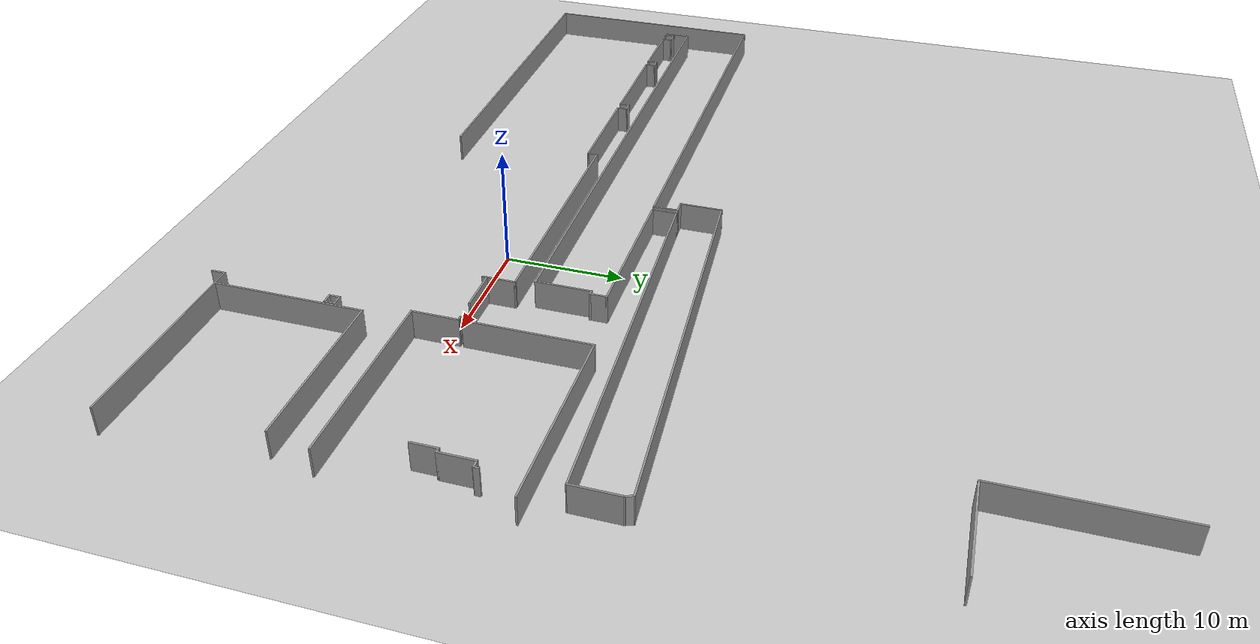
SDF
<sdf version="1.6">
 <world name="default">
  <model name="ground_plane">
   <static>1</static>
   <link name="link">
    <collision name="collision">
     <geometry><plane><normal>0 0 1</normal><size>100 100</size></plane></geometry>
     <surface><friction><ode><mu>100</mu><mu2>50</mu2></ode></friction></surface>
    </collision>
    <visual name="visual">
     <cast_shadows>0</cast_shadows>
     <geometry><plane><normal>0 0 1</normal><size>100 100</size></plane></geometry>
     <material>
      <script><uri>file://media/materials/scripts/gazebo.material</uri><name>Gazebo/Grey</name></script>
     </material>
    </visual>
   </link>
  </model>
  <model name="SEH_double_doors_open">
   <pose>0.441181 0.582592 0 0 -0 0</pose>
   <link name="Wall_1">
    <collision name="Wall_1_Collision">
     <geometry><box><size>31 0.15 2.5</size></box></geometry>
     <pose>0 0 1.25 0 -0 0</pose>
    </collision>
    <visual name="Wall_1_Visual">
     <pose>0 0 1.25 0 -0 0</pose>
     <geometry><box><size>31 0.15 2.5</size></box></geometry>
     <material>
      <script><uri>file://media/materials/scripts/gazebo.material</uri><name>Gazebo/Grey</name></script>
      <ambient>1 1 1 1</ambient>
     </material>
     <meta><layer>0</layer></meta>
    </visual>
    <pose>-30.613 -10.885 0 0 -0 3.14159</pose>
   </link>
   <link name="Wall_10">
    <collision name="Wall_10_Collision">
     <geometry><box><size>0.754811 0.15 2.5</size></box></geometry>
     <pose>0 0 1.25 0 -0 0</pose>
    </collision>
    <visual name="Wall_10_Visual">
     <pose>0 0 1.25 0 -0 0</pose>
     <geometry><box><size>0.754811 0.15 2.5</size></box></geometry>
     <material>
      <script><uri>file://media/materials/scripts/gazebo.material</uri><name>Gazebo/Grey</name></script>
      <ambient>1 1 1 1</ambient>
     </material>
     <meta><layer>0</layer></meta>
    </visual>
    <pose>25.6544 17.6654 0 0 -0 1.96559</pose>
   </link>
   <link name="Wall_122">
    <collision name="Wall_122_Collision">
     <geometry><box><size>0.5 0.15 2.5</size></box></geometry>
     <pose>0 0 1.25 0 -0 0</pose>
    </collision>
    <visual name="Wall_122_Visual">
     <pose>0 0 1.25 0 -0 0</pose>
     <geometry><box><size>0.5 0.15 2.5</size></box></geometry>
     <material>
      <script><uri>file://media/materials/scripts/gazebo.material</uri><name>Gazebo/Grey</name></script>
      <ambient>1 1 1 1</ambient>
     </material>
     <meta><layer>0</layer></meta>
    </visual>
    <pose>5.8537 0.004461 0 0 -0 1.5708</pose>
   </link>
   <link name="Wall_123">
    <collision name="Wall_123_Collision">
     <geometry><box><size>3.75 0.15 2.5</size></box></geometry>
     <pose>0 0 1.25 0 -0 0</pose>
    </collision>
    <visual name="Wall_123_Visual">
     <pose>0 0 1.25 0 -0 0</pose>
     <geometry><box><size>3.75 0.15 2.5</size></box></geometry>
     <material>
      <script><uri>file://media/materials/scripts/gazebo.material</uri><name>Gazebo/Grey</name></script>
      <ambient>1 1 1 1</ambient>
     </material>
     <meta><layer>0</layer></meta>
    </visual>
    <pose>7.6537 0.179461 0 0 -0 0</pose>
   </link>
   <link name="Wall_125">
    <collision name="Wall_125_Collision">
     <geometry><box><size>0.5 0.15 2.5</size></box></geometry>
     <pose>0 0 1.25 0 -0 0</pose>
    </collision>
    <visual name="Wall_125_Visual">
     <pose>0 0 1.25 0 -0 0</pose>
     <geometry><box><size>0.5 0.15 2.5</size></box></geometry>
     <material>
      <script><uri>file://media/materials/scripts/gazebo.material</uri><name>Gazebo/Grey</name></script>
      <ambient>1 1 1 1</ambient>
     </material>
     <meta><layer>0</layer></meta>
    </visual>
    <pose>11.5048 0.195336 0 0 -0 0</pose>
   </link>
   <link name="Wall_126">
    <collision name="Wall_126_Collision">
     <geometry><box><size>4 0.15 2.5</size></box></geometry>
     <pose>0 0 1.25 0 -0 0</pose>
    </collision>
    <visual name="Wall_126_Visual">
     <pose>0 0 1.25 0 -0 0</pose>
     <geometry><box><size>4 0.15 2.5</size></box></geometry>
     <material>
      <script><uri>file://media/materials/scripts/gazebo.material</uri><name>Gazebo/Grey</name></script>
      <ambient>1 1 1 1</ambient>
     </material>
     <meta><layer>0</layer></meta>
    </visual>
    <pose>11.6798 -1.72966 0 0 0 -1.5708</pose>
   </link>
   <link name="Wall_127">
    <collision name="Wall_127_Collision">
     <geometry><box><size>16 0.15 2.5</size></box></geometry>
     <pose>0 0 1.25 0 -0 0</pose>
    </collision>
    <visual name="Wall_127_Visual">
     <pose>0 0 1.25 0 -0 0</pose>
     <geometry><box><size>16 0.15 2.5</size></box></geometry>
     <material>
      <script><uri>file://media/materials/scripts/gazebo.material</uri><name>Gazebo/Grey</name></script>
      <ambient>1 1 1 1</ambient>
     </material>
     <meta><layer>0</layer></meta>
    </visual>
    <pose>19.6048 -3.65466 0 0 -0 0</pose>
   </link>
   <link name="Wall_135">
    <collision name="Wall_135_Collision">
     <geometry><box><size>2.25 0.15 2.5</size></box></geometry>
     <pose>0 0 1.25 0 -0 0</pose>
    </collision>
    <visual name="Wall_135_Visual">
     <pose>0 0 1.25 0 -0 0</pose>
     <geometry><box><size>2.25 0.15 2.5</size></box></geometry>
     <material>
      <script><uri>file://media/materials/scripts/gazebo.material</uri><name>Gazebo/Grey</name></script>
      <ambient>1 1 1 1</ambient>
     </material>
     <meta><layer>0</layer></meta>
    </visual>
    <pose>25.0798 3.39534 0 0 -0 1.5708</pose>
   </link>
   <link name="Wall_136">
    <collision name="Wall_136_Collision">
     <geometry><box><size>0.5 0.15 2.5</size></box></geometry>
     <pose>0 0 1.25 0 -0 0</pose>
    </collision>
    <visual name="Wall_136_Visual">
     <pose>0 0 1.25 0 -0 0</pose>
     <geometry><box><size>0.5 0.15 2.5</size></box></geometry>
     <material>
      <script><uri>file://media/materials/scripts/gazebo.material</uri><name>Gazebo/Grey</name></script>
      <ambient>1 1 1 1</ambient>
     </material>
     <meta><layer>0</layer></meta>
    </visual>
    <pose>25.2548 4.44534 0 0 -0 0</pose>
   </link>
   <link name="Wall_137">
    <collision name="Wall_137_Collision">
     <geometry><box><size>3 0.15 2.5</size></box></geometry>
     <pose>0 0 1.25 0 -0 0</pose>
    </collision>
    <visual name="Wall_137_Visual">
     <pose>0 0 1.25 0 -0 0</pose>
     <geometry><box><size>3 0.15 2.5</size></box></geometry>
     <material>
      <script><uri>file://media/materials/scripts/gazebo.material</uri><name>Gazebo/Grey</name></script>
      <ambient>1 1 1 1</ambient>
     </material>
     <meta><layer>0</layer></meta>
    </visual>
    <pose>25.4298 5.87034 0 0 -0 1.5708</pose>
   </link>
   <link name="Wall_138">
    <collision name="Wall_138_Collision">
     <geometry><box><size>0.75 0.15 2.5</size></box></geometry>
     <pose>0 0 1.25 0 -0 0</pose>
    </collision>
    <visual name="Wall_138_Visual">
     <pose>0 0 1.25 0 -0 0</pose>
     <geometry><box><size>0.75 0.15 2.5</size></box></geometry>
     <material>
      <script><uri>file://media/materials/scripts/gazebo.material</uri><name>Gazebo/Grey</name></script>
      <ambient>1 1 1 1</ambient>
     </material>
     <meta><layer>0</layer></meta>
    </visual>
    <pose>25.7298 7.29534 0 0 -0 0</pose>
   </link>
   <link name="Wall_143">
    <collision name="Wall_143_Collision">
     <geometry><box><size>0.5 0.15 2.5</size></box></geometry>
     <pose>0 0 1.25 0 -0 0</pose>
    </collision>
    <visual name="Wall_143_Visual">
     <pose>0 0 1.25 0 -0 0</pose>
     <geometry><box><size>0.5 0.15 2.5</size></box></geometry>
     <material>
      <script><uri>file://media/materials/scripts/gazebo.material</uri><name>Gazebo/Grey</name></script>
      <ambient>1 1 1 1</ambient>
     </material>
     <meta><layer>0</layer></meta>
    </visual>
    <pose>26.0298 7.47034 0 0 -0 1.5708</pose>
   </link>
   <link name="Wall_158">
    <collision name="Wall_158_Collision">
     <geometry><box><size>17 0.15 2.5</size></box></geometry>
     <pose>0 0 1.25 0 -0 0</pose>
    </collision>
    <visual name="Wall_158_Visual">
     <pose>0 0 1.25 0 -0 0</pose>
     <geometry><box><size>17 0.15 2.5</size></box></geometry>
     <material>
      <script><uri>file://media/materials/scripts/gazebo.material</uri><name>Gazebo/Grey</name></script>
      <ambient>1 1 1 1</ambient>
     </material>
     <meta><layer>0</layer></meta>
    </visual>
    <pose>19.6895 -19.9521 0 0 -0 3.14159</pose>
   </link>
   <link name="Wall_159">
    <collision name="Wall_159_Collision">
     <geometry><box><size>1.25 0.15 2.5</size></box></geometry>
     <pose>0 0 1.25 0 -0 0</pose>
    </collision>
    <visual name="Wall_159_Visual">
     <pose>0 0 1.25 0 -0 0</pose>
     <geometry><box><size>1.25 0.15 2.5</size></box></geometry>
     <material>
      <script><uri>file://media/materials/scripts/gazebo.material</uri><name>Gazebo/Grey</name></script>
      <ambient>1 1 1 1</ambient>
     </material>
     <meta><layer>0</layer></meta>
    </visual>
    <pose>11.2645 -20.5021 0 0 0 -1.5708</pose>
   </link>
   <link name="Wall_17">
    <collision name="Wall_17_Collision">
     <geometry><box><size>8.3246 0.15 2.5</size></box></geometry>
     <pose>0 0 1.25 0 -0 0</pose>
    </collision>
    <visual name="Wall_17_Visual">
     <pose>0 0 1.25 0 -0 0</pose>
     <geometry><box><size>8.3246 0.15 2.5</size></box></geometry>
     <material>
      <script><uri>file://media/materials/scripts/gazebo.material</uri><name>Gazebo/Grey</name></script>
      <ambient>1 1 1 1</ambient>
     </material>
     <meta><layer>0</layer></meta>
    </visual>
    <pose>22.0285 38.5432 0 0 0 -3.14119</pose>
   </link>
   <link name="Wall_172">
    <collision name="Wall_172_Collision">
     <geometry><box><size>14.25 0.15 2.5</size></box></geometry>
     <pose>0 0 1.25 0 -0 0</pose>
    </collision>
    <visual name="Wall_172_Visual">
     <pose>0 0 1.25 0 -0 0</pose>
     <geometry><box><size>14.25 0.15 2.5</size></box></geometry>
     <material>
      <script><uri>file://media/materials/scripts/gazebo.material</uri><name>Gazebo/Grey</name></script>
      <ambient>1 1 1 1</ambient>
     </material>
     <meta><layer>0</layer></meta>
    </visual>
    <pose>19.7556 -7.2556 0 0 -0 3.14159</pose>
   </link>
   <link name="Wall_173">
    <collision name="Wall_173_Collision">
     <geometry><box><size>12.75 0.15 2.5</size></box></geometry>
     <pose>0 0 1.25 0 -0 0</pose>
    </collision>
    <visual name="Wall_173_Visual">
     <pose>0 0 1.25 0 -0 0</pose>
     <geometry><box><size>12.75 0.15 2.5</size></box></geometry>
     <material>
      <script><uri>file://media/materials/scripts/gazebo.material</uri><name>Gazebo/Grey</name></script>
      <ambient>1 1 1 1</ambient>
     </material>
     <meta><layer>0</layer></meta>
    </visual>
    <pose>12.7056 -13.5556 0 0 0 -1.5708</pose>
   </link>
   <link name="Wall_175">
    <collision name="Wall_175_Collision">
     <geometry><box><size>1 0.15 2.5</size></box></geometry>
     <pose>0 0 1.25 0 -0 0</pose>
    </collision>
    <visual name="Wall_175_Visual">
     <pose>0 0 1.25 0 -0 0</pose>
     <geometry><box><size>1 0.15 2.5</size></box></geometry>
     <material>
      <script><uri>file://media/materials/scripts/gazebo.material</uri><name>Gazebo/Grey</name></script>
      <ambient>1 1 1 1</ambient>
     </material>
     <meta><layer>0</layer></meta>
    </visual>
    <pose>12.0388 -9.71136 0 0 -0 3.14159</pose>
   </link>
   <link name="Wall_176">
    <collision name="Wall_176_Collision">
     <geometry><box><size>1 0.15 2.5</size></box></geometry>
     <pose>0 0 1.25 0 -0 0</pose>
    </collision>
    <visual name="Wall_176_Visual">
     <pose>0 0 1.25 0 -0 0</pose>
     <geometry><box><size>1 0.15 2.5</size></box></geometry>
     <material>
      <script><uri>file://media/materials/scripts/gazebo.material</uri><name>Gazebo/Grey</name></script>
      <ambient>1 1 1 1</ambient>
     </material>
     <meta><layer>0</layer></meta>
    </visual>
    <pose>11.6138 -10.1364 0 0 0 -1.5708</pose>
   </link>
   <link name="Wall_177">
    <collision name="Wall_177_Collision">
     <geometry><box><size>1 0.15 2.5</size></box></geometry>
     <pose>0 0 1.25 0 -0 0</pose>
    </collision>
    <visual name="Wall_177_Visual">
     <pose>0 0 1.25 0 -0 0</pose>
     <geometry><box><size>1 0.15 2.5</size></box></geometry>
     <material>
      <script><uri>file://media/materials/scripts/gazebo.material</uri><name>Gazebo/Grey</name></script>
      <ambient>1 1 1 1</ambient>
     </material>
     <meta><layer>0</layer></meta>
    </visual>
    <pose>12.0388 -10.5614 0 0 -0 0</pose>
   </link>
   <link name="Wall_178">
    <collision name="Wall_178_Collision">
     <geometry><box><size>1 0.15 2.5</size></box></geometry>
     <pose>0 0 1.25 0 -0 0</pose>
    </collision>
    <visual name="Wall_178_Visual">
     <pose>0 0 1.25 0 -0 0</pose>
     <geometry><box><size>1 0.15 2.5</size></box></geometry>
     <material>
      <script><uri>file://media/materials/scripts/gazebo.material</uri><name>Gazebo/Grey</name></script>
      <ambient>1 1 1 1</ambient>
     </material>
     <meta><layer>0</layer></meta>
    </visual>
    <pose>12.4638 -10.1364 0 0 -0 1.5708</pose>
   </link>
   <link name="Wall_18">
    <collision name="Wall_18_Collision">
     <geometry><box><size>13.75 0.15 2.5</size></box></geometry>
     <pose>0 0 1.25 0 -0 0</pose>
    </collision>
    <visual name="Wall_18_Visual">
     <pose>0 0 1.25 0 -0 0</pose>
     <geometry><box><size>13.75 0.15 2.5</size></box></geometry>
     <material>
      <script><uri>file://media/materials/scripts/gazebo.material</uri><name>Gazebo/Grey</name></script>
      <ambient>1 1 1 1</ambient>
     </material>
     <meta><layer>0</layer></meta>
    </visual>
    <pose>17.9412 45.3416 0 0 -0 1.5708</pose>
   </link>
   <link name="Wall_2">
    <collision name="Wall_2_Collision">
     <geometry><box><size>21 0.15 2.5</size></box></geometry>
     <pose>0 0 1.25 0 -0 0</pose>
    </collision>
    <visual name="Wall_2_Visual">
     <pose>0 0 1.25 0 -0 0</pose>
     <geometry><box><size>21 0.15 2.5</size></box></geometry>
     <material>
      <script><uri>file://media/materials/scripts/gazebo.material</uri><name>Gazebo/Grey</name></script>
      <ambient>1 1 1 1</ambient>
     </material>
     <meta><layer>0</layer></meta>
    </visual>
    <pose>-46.038 -0.459991 0 0 -0 1.5708</pose>
   </link>
   <link name="Wall_205">
    <collision name="Wall_205_Collision">
     <geometry><box><size>4 0.15 2.5</size></box></geometry>
     <pose>0 0 1.25 0 -0 0</pose>
    </collision>
    <visual name="Wall_205_Visual">
     <pose>0 0 1.25 0 -0 0</pose>
     <geometry><box><size>4 0.15 2.5</size></box></geometry>
     <material>
      <script><uri>file://media/materials/scripts/gazebo.material</uri><name>Gazebo/Grey</name></script>
      <ambient>1 1 1 1</ambient>
     </material>
     <meta><layer>0</layer></meta>
    </visual>
    <pose>25.7707 15.4613 0 0 0 -1.5708</pose>
   </link>
   <link name="Wall_207">
    <collision name="Wall_207_Collision">
     <geometry><box><size>34.1406 0.15 2.5</size></box></geometry>
     <pose>0 0 1.25 0 -0 0</pose>
    </collision>
    <visual name="Wall_207_Visual">
     <pose>0 0 1.25 0 -0 0</pose>
     <geometry><box><size>34.1406 0.15 2.5</size></box></geometry>
     <material>
      <script><uri>file://media/materials/scripts/gazebo.material</uri><name>Gazebo/Grey</name></script>
      <ambient>1 1 1 1</ambient>
     </material>
     <meta><layer>0</layer></meta>
    </visual>
    <pose>8.79135 12.8007 0 0 -0 0.043299</pose>
   </link>
   <link name="Wall_219">
    <collision name="Wall_219_Collision">
     <geometry><box><size>0.15 0.15 2.5</size></box></geometry>
     <pose>0 0 1.25 0 -0 0</pose>
    </collision>
    <visual name="Wall_219_Visual">
     <pose>0 0 1.25 0 -0 0</pose>
     <geometry><box><size>0.15 0.15 2.5</size></box></geometry>
     <material>
      <script><uri>file://media/materials/scripts/gazebo.material</uri><name>Gazebo/Grey</name></script>
      <ambient>1 1 1 1</ambient>
     </material>
     <meta><layer>0</layer></meta>
    </visual>
    <pose>11.3298 0.195336 0 0 -0 0</pose>
   </link>
   <link name="Wall_222">
    <collision name="Wall_222_Collision">
     <geometry><box><size>0.5 0.15 2.5</size></box></geometry>
     <pose>0 0 1.25 0 -0 0</pose>
    </collision>
    <visual name="Wall_222_Visual">
     <pose>0 0 1.25 0 -0 0</pose>
     <geometry><box><size>0.5 0.15 2.5</size></box></geometry>
     <material>
      <script><uri>file://media/materials/scripts/gazebo.material</uri><name>Gazebo/Grey</name></script>
      <ambient>1 1 1 1</ambient>
     </material>
     <meta><layer>0</layer></meta>
    </visual>
    <pose>11.3298 0.370336 0 0 -0 1.5708</pose>
   </link>
   <link name="Wall_223">
    <collision name="Wall_223_Collision">
     <geometry><box><size>0.5 0.15 2.5</size></box></geometry>
     <pose>0 0 1.25 0 -0 0</pose>
    </collision>
    <visual name="Wall_223_Visual">
     <pose>0 0 1.25 0 -0 0</pose>
     <geometry><box><size>0.5 0.15 2.5</size></box></geometry>
     <material>
      <script><uri>file://media/materials/scripts/gazebo.material</uri><name>Gazebo/Grey</name></script>
      <ambient>1 1 1 1</ambient>
     </material>
     <meta><layer>0</layer></meta>
    </visual>
    <pose>11.5048 0.545336 0 0 -0 0</pose>
   </link>
   <link name="Wall_224">
    <collision name="Wall_224_Collision">
     <geometry><box><size>10.5 0.15 2.5</size></box></geometry>
     <pose>0 0 1.25 0 -0 0</pose>
    </collision>
    <visual name="Wall_224_Visual">
     <pose>0 0 1.25 0 -0 0</pose>
     <geometry><box><size>10.5 0.15 2.5</size></box></geometry>
     <material>
      <script><uri>file://media/materials/scripts/gazebo.material</uri><name>Gazebo/Grey</name></script>
      <ambient>1 1 1 1</ambient>
     </material>
     <meta><layer>0</layer></meta>
    </visual>
    <pose>11.6798 5.72034 0 0 -0 1.5708</pose>
   </link>
   <link name="Wall_227">
    <collision name="Wall_227_Collision">
     <geometry><box><size>16.2001 0.15 2.5</size></box></geometry>
     <pose>0 0 1.25 0 -0 0</pose>
    </collision>
    <visual name="Wall_227_Visual">
     <pose>0 0 1.25 0 -0 0</pose>
     <geometry><box><size>16.2001 0.15 2.5</size></box></geometry>
     <material>
      <script><uri>file://media/materials/scripts/gazebo.material</uri><name>Gazebo/Grey</name></script>
      <ambient>1 1 1 1</ambient>
     </material>
     <meta><layer>0</layer></meta>
    </visual>
    <pose>19.7048 10.8703 0 0 -0 3.13848</pose>
   </link>
   <link name="Wall_229">
    <collision name="Wall_229_Collision">
     <geometry><box><size>2.25 0.15 2.5</size></box></geometry>
     <pose>0 0 1.25 0 -0 0</pose>
    </collision>
    <visual name="Wall_229_Visual">
     <pose>0 0 1.25 0 -0 0</pose>
     <geometry><box><size>2.25 0.15 2.5</size></box></geometry>
     <material>
      <script><uri>file://media/materials/scripts/gazebo.material</uri><name>Gazebo/Grey</name></script>
      <ambient>1 1 1 1</ambient>
     </material>
     <meta><layer>0</layer></meta>
    </visual>
    <pose>-7.69276 11.047 0 0 0 -1.5708</pose>
   </link>
   <link name="Wall_230">
    <collision name="Wall_230_Collision">
     <geometry><box><size>13.5 0.15 2.5</size></box></geometry>
     <pose>0 0 1.25 0 -0 0</pose>
    </collision>
    <visual name="Wall_230_Visual">
     <pose>0 0 1.25 0 -0 0</pose>
     <geometry><box><size>13.5 0.15 2.5</size></box></geometry>
     <material>
      <script><uri>file://media/materials/scripts/gazebo.material</uri><name>Gazebo/Grey</name></script>
      <ambient>1 1 1 1</ambient>
     </material>
     <meta><layer>0</layer></meta>
    </visual>
    <pose>-1.01776 9.99696 0 0 -0 0</pose>
   </link>
   <link name="Wall_231">
    <collision name="Wall_231_Collision">
     <geometry><box><size>1.5 0.15 2.5</size></box></geometry>
     <pose>0 0 1.25 0 -0 0</pose>
    </collision>
    <visual name="Wall_231_Visual">
     <pose>0 0 1.25 0 -0 0</pose>
     <geometry><box><size>1.5 0.15 2.5</size></box></geometry>
     <material>
      <script><uri>file://media/materials/scripts/gazebo.material</uri><name>Gazebo/Grey</name></script>
      <ambient>1 1 1 1</ambient>
     </material>
     <meta><layer>0</layer></meta>
    </visual>
    <pose>5.65724 9.32196 0 0 0 -1.5708</pose>
   </link>
   <link name="Wall_234">
    <collision name="Wall_234_Collision">
     <geometry><box><size>0.5 0.15 2.5</size></box></geometry>
     <pose>0 0 1.25 0 -0 0</pose>
    </collision>
    <visual name="Wall_234_Visual">
     <pose>0 0 1.25 0 -0 0</pose>
     <geometry><box><size>0.5 0.15 2.5</size></box></geometry>
     <material>
      <script><uri>file://media/materials/scripts/gazebo.material</uri><name>Gazebo/Grey</name></script>
      <ambient>1 1 1 1</ambient>
     </material>
     <meta><layer>0</layer></meta>
    </visual>
    <pose>5.48224 8.64696 0 0 -0 3.14159</pose>
   </link>
   <link name="Wall_235">
    <collision name="Wall_235_Collision">
     <geometry><box><size>4.75 0.15 2.5</size></box></geometry>
     <pose>0 0 1.25 0 -0 0</pose>
    </collision>
    <visual name="Wall_235_Visual">
     <pose>0 0 1.25 0 -0 0</pose>
     <geometry><box><size>4.75 0.15 2.5</size></box></geometry>
     <material>
      <script><uri>file://media/materials/scripts/gazebo.material</uri><name>Gazebo/Grey</name></script>
      <ambient>1 1 1 1</ambient>
     </material>
     <meta><layer>0</layer></meta>
    </visual>
    <pose>5.30724 6.34696 0 0 0 -1.5708</pose>
   </link>
   <link name="Wall_236">
    <collision name="Wall_236_Collision">
     <geometry><box><size>49.25 0.15 2.5</size></box></geometry>
     <pose>0 0 1.25 0 -0 0</pose>
    </collision>
    <visual name="Wall_236_Visual">
     <pose>0 0 1.25 0 -0 0</pose>
     <geometry><box><size>49.25 0.15 2.5</size></box></geometry>
     <material>
      <script><uri>file://media/materials/scripts/gazebo.material</uri><name>Gazebo/Grey</name></script>
      <ambient>1 1 1 1</ambient>
     </material>
     <meta><layer>0</layer></meta>
    </visual>
    <pose>-19.2428 4.04696 0 0 -0 3.14159</pose>
   </link>
   <link name="Wall_239">
    <collision name="Wall_239_Collision">
     <geometry><box><size>2.5 0.15 2.5</size></box></geometry>
     <pose>0 0 1.25 0 -0 0</pose>
    </collision>
    <visual name="Wall_239_Visual">
     <pose>0 0 1.25 0 -0 0</pose>
     <geometry><box><size>2.5 0.15 2.5</size></box></geometry>
     <material>
      <script><uri>file://media/materials/scripts/gazebo.material</uri><name>Gazebo/Grey</name></script>
      <ambient>1 1 1 1</ambient>
     </material>
     <meta><layer>0</layer></meta>
    </visual>
    <pose>5.8537 1.35446 0 0 -0 1.5708</pose>
   </link>
   <link name="Wall_240">
    <collision name="Wall_240_Collision">
     <geometry><box><size>21.5 0.15 2.5</size></box></geometry>
     <pose>0 0 1.25 0 -0 0</pose>
    </collision>
    <visual name="Wall_240_Visual">
     <pose>0 0 1.25 0 -0 0</pose>
     <geometry><box><size>21.5 0.15 2.5</size></box></geometry>
     <material>
      <script><uri>file://media/materials/scripts/gazebo.material</uri><name>Gazebo/Grey</name></script>
      <ambient>1 1 1 1</ambient>
     </material>
     <meta><layer>0</layer></meta>
    </visual>
    <pose>-4.8213 2.52946 0 0 -0 3.14159</pose>
   </link>
   <link name="Wall_241">
    <collision name="Wall_241_Collision">
     <geometry><box><size>1 0.15 2.5</size></box></geometry>
     <pose>0 0 1.25 0 -0 0</pose>
    </collision>
    <visual name="Wall_241_Visual">
     <pose>0 0 1.25 0 -0 0</pose>
     <geometry><box><size>1 0.15 2.5</size></box></geometry>
     <material>
      <script><uri>file://media/materials/scripts/gazebo.material</uri><name>Gazebo/Grey</name></script>
      <ambient>1 1 1 1</ambient>
     </material>
     <meta><layer>0</layer></meta>
    </visual>
    <pose>-15.4963 2.10446 0 0 0 -1.5708</pose>
   </link>
   <link name="Wall_243">
    <collision name="Wall_243_Collision">
     <geometry><box><size>9.75 0.15 2.5</size></box></geometry>
     <pose>0 0 1.25 0 -0 0</pose>
    </collision>
    <visual name="Wall_243_Visual">
     <pose>0 0 1.25 0 -0 0</pose>
     <geometry><box><size>9.75 0.15 2.5</size></box></geometry>
     <material>
      <script><uri>file://media/materials/scripts/gazebo.material</uri><name>Gazebo/Grey</name></script>
      <ambient>1 1 1 1</ambient>
     </material>
     <meta><layer>0</layer></meta>
    </visual>
    <pose>-20.2963 1.67946 0 0 -0 3.14159</pose>
   </link>
   <link name="Wall_244">
    <collision name="Wall_244_Collision">
     <geometry><box><size>1 0.15 2.5</size></box></geometry>
     <pose>0 0 1.25 0 -0 0</pose>
    </collision>
    <visual name="Wall_244_Visual">
     <pose>0 0 1.25 0 -0 0</pose>
     <geometry><box><size>1 0.15 2.5</size></box></geometry>
     <material>
      <script><uri>file://media/materials/scripts/gazebo.material</uri><name>Gazebo/Grey</name></script>
      <ambient>1 1 1 1</ambient>
     </material>
     <meta><layer>0</layer></meta>
    </visual>
    <pose>-25.0963 2.10446 0 0 -0 1.5708</pose>
   </link>
   <link name="Wall_245">
    <collision name="Wall_245_Collision">
     <geometry><box><size>1 0.15 2.5</size></box></geometry>
     <pose>0 0 1.25 0 -0 0</pose>
    </collision>
    <visual name="Wall_245_Visual">
     <pose>0 0 1.25 0 -0 0</pose>
     <geometry><box><size>1 0.15 2.5</size></box></geometry>
     <material>
      <script><uri>file://media/materials/scripts/gazebo.material</uri><name>Gazebo/Grey</name></script>
      <ambient>1 1 1 1</ambient>
     </material>
     <meta><layer>0</layer></meta>
    </visual>
    <pose>-25.5213 2.52946 0 0 -0 3.14159</pose>
   </link>
   <link name="Wall_246">
    <collision name="Wall_246_Collision">
     <geometry><box><size>1 0.15 2.5</size></box></geometry>
     <pose>0 0 1.25 0 -0 0</pose>
    </collision>
    <visual name="Wall_246_Visual">
     <pose>0 0 1.25 0 -0 0</pose>
     <geometry><box><size>1 0.15 2.5</size></box></geometry>
     <material>
      <script><uri>file://media/materials/scripts/gazebo.material</uri><name>Gazebo/Grey</name></script>
      <ambient>1 1 1 1</ambient>
     </material>
     <meta><layer>0</layer></meta>
    </visual>
    <pose>-25.9463 2.10446 0 0 0 -1.5708</pose>
   </link>
   <link name="Wall_247">
    <collision name="Wall_247_Collision">
     <geometry><box><size>9.5 0.15 2.5</size></box></geometry>
     <pose>0 0 1.25 0 -0 0</pose>
    </collision>
    <visual name="Wall_247_Visual">
     <pose>0 0 1.25 0 -0 0</pose>
     <geometry><box><size>9.5 0.15 2.5</size></box></geometry>
     <material>
      <script><uri>file://media/materials/scripts/gazebo.material</uri><name>Gazebo/Grey</name></script>
      <ambient>1 1 1 1</ambient>
     </material>
     <meta><layer>0</layer></meta>
    </visual>
    <pose>-30.6213 1.67946 0 0 -0 3.14159</pose>
   </link>
   <link name="Wall_248">
    <collision name="Wall_248_Collision">
     <geometry><box><size>0.25 0.15 2.5</size></box></geometry>
     <pose>0 0 1.25 0 -0 0</pose>
    </collision>
    <visual name="Wall_248_Visual">
     <pose>0 0 1.25 0 -0 0</pose>
     <geometry><box><size>0.25 0.15 2.5</size></box></geometry>
     <material>
      <script><uri>file://media/materials/scripts/gazebo.material</uri><name>Gazebo/Grey</name></script>
      <ambient>1 1 1 1</ambient>
     </material>
     <meta><layer>0</layer></meta>
    </visual>
    <pose>-35.3463 1.67946 0 0 -0 3.14159</pose>
   </link>
   <link name="Wall_252">
    <collision name="Wall_252_Collision">
     <geometry><box><size>2.5 0.15 2.5</size></box></geometry>
     <pose>0 0 1.25 0 -0 0</pose>
    </collision>
    <visual name="Wall_252_Visual">
     <pose>0 0 1.25 0 -0 0</pose>
     <geometry><box><size>2.5 0.15 2.5</size></box></geometry>
     <material>
      <script><uri>file://media/materials/scripts/gazebo.material</uri><name>Gazebo/Grey</name></script>
      <ambient>1 1 1 1</ambient>
     </material>
     <meta><layer>0</layer></meta>
    </visual>
    <pose>-43.7928 2.87196 0 0 0 -1.5708</pose>
   </link>
   <link name="Wall_253">
    <collision name="Wall_253_Collision">
     <geometry><box><size>0.5 0.15 2.5</size></box></geometry>
     <pose>0 0 1.25 0 -0 0</pose>
    </collision>
    <visual name="Wall_253_Visual">
     <pose>0 0 1.25 0 -0 0</pose>
     <geometry><box><size>0.5 0.15 2.5</size></box></geometry>
     <material>
      <script><uri>file://media/materials/scripts/gazebo.material</uri><name>Gazebo/Grey</name></script>
      <ambient>1 1 1 1</ambient>
     </material>
     <meta><layer>0</layer></meta>
    </visual>
    <pose>-43.6178 1.69696 0 0 -0 0</pose>
   </link>
   <link name="Wall_254">
    <collision name="Wall_254_Collision">
     <geometry><box><size>1 0.15 2.5</size></box></geometry>
     <pose>0 0 1.25 0 -0 0</pose>
    </collision>
    <visual name="Wall_254_Visual">
     <pose>0 0 1.25 0 -0 0</pose>
     <geometry><box><size>1 0.15 2.5</size></box></geometry>
     <material>
      <script><uri>file://media/materials/scripts/gazebo.material</uri><name>Gazebo/Grey</name></script>
      <ambient>1 1 1 1</ambient>
     </material>
     <meta><layer>0</layer></meta>
    </visual>
    <pose>-43.4428 2.12196 0 0 -0 1.5708</pose>
   </link>
   <link name="Wall_255">
    <collision name="Wall_255_Collision">
     <geometry><box><size>1.25 0.15 2.5</size></box></geometry>
     <pose>0 0 1.25 0 -0 0</pose>
    </collision>
    <visual name="Wall_255_Visual">
     <pose>0 0 1.25 0 -0 0</pose>
     <geometry><box><size>1.25 0.15 2.5</size></box></geometry>
     <material>
      <script><uri>file://media/materials/scripts/gazebo.material</uri><name>Gazebo/Grey</name></script>
      <ambient>1 1 1 1</ambient>
     </material>
     <meta><layer>0</layer></meta>
    </visual>
    <pose>-42.8928 2.54696 0 0 -0 0</pose>
   </link>
   <link name="Wall_257">
    <collision name="Wall_257_Collision">
     <geometry><box><size>6 0.15 2.5</size></box></geometry>
     <pose>0 0 1.25 0 -0 0</pose>
    </collision>
    <visual name="Wall_257_Visual">
     <pose>0 0 1.25 0 -0 0</pose>
     <geometry><box><size>6 0.15 2.5</size></box></geometry>
     <material>
      <script><uri>file://media/materials/scripts/gazebo.material</uri><name>Gazebo/Grey</name></script>
      <ambient>1 1 1 1</ambient>
     </material>
     <meta><layer>0</layer></meta>
    </visual>
    <pose>-39.2971 1.67684 0 0 -0 0</pose>
   </link>
   <link name="Wall_263">
    <collision name="Wall_263_Collision">
     <geometry><box><size>1 0.15 2.5</size></box></geometry>
     <pose>0 0 1.25 0 -0 0</pose>
    </collision>
    <visual name="Wall_263_Visual">
     <pose>0 0 1.25 0 -0 0</pose>
     <geometry><box><size>1 0.15 2.5</size></box></geometry>
     <material>
      <script><uri>file://media/materials/scripts/gazebo.material</uri><name>Gazebo/Grey</name></script>
      <ambient>1 1 1 1</ambient>
     </material>
     <meta><layer>0</layer></meta>
    </visual>
    <pose>-36.3721 2.10184 0 0 -0 1.5708</pose>
   </link>
   <link name="Wall_264">
    <collision name="Wall_264_Collision">
     <geometry><box><size>1 0.15 2.5</size></box></geometry>
     <pose>0 0 1.25 0 -0 0</pose>
    </collision>
    <visual name="Wall_264_Visual">
     <pose>0 0 1.25 0 -0 0</pose>
     <geometry><box><size>1 0.15 2.5</size></box></geometry>
     <material>
      <script><uri>file://media/materials/scripts/gazebo.material</uri><name>Gazebo/Grey</name></script>
      <ambient>1 1 1 1</ambient>
     </material>
     <meta><layer>0</layer></meta>
    </visual>
    <pose>-35.9471 2.52684 0 0 -0 0</pose>
   </link>
   <link name="Wall_265">
    <collision name="Wall_265_Collision">
     <geometry><box><size>1 0.15 2.5</size></box></geometry>
     <pose>0 0 1.25 0 -0 0</pose>
    </collision>
    <visual name="Wall_265_Visual">
     <pose>0 0 1.25 0 -0 0</pose>
     <geometry><box><size>1 0.15 2.5</size></box></geometry>
     <material>
      <script><uri>file://media/materials/scripts/gazebo.material</uri><name>Gazebo/Grey</name></script>
      <ambient>1 1 1 1</ambient>
     </material>
     <meta><layer>0</layer></meta>
    </visual>
    <pose>-35.5221 2.10184 0 0 0 -1.5708</pose>
   </link>
   <link name="Wall_267">
    <collision name="Wall_267_Collision">
     <geometry><box><size>1 0.15 2.5</size></box></geometry>
     <pose>0 0 1.25 0 -0 0</pose>
    </collision>
    <visual name="Wall_267_Visual">
     <pose>0 0 1.25 0 -0 0</pose>
     <geometry><box><size>1 0.15 2.5</size></box></geometry>
     <material>
      <script><uri>file://media/materials/scripts/gazebo.material</uri><name>Gazebo/Grey</name></script>
      <ambient>1 1 1 1</ambient>
     </material>
     <meta><layer>0</layer></meta>
    </visual>
    <pose>-42.3428 2.12196 0 0 0 -1.5708</pose>
   </link>
   <link name="Wall_3">
    <collision name="Wall_3_Collision">
     <geometry><box><size>38 0.15 2.5</size></box></geometry>
     <pose>0 0 1.25 0 -0 0</pose>
    </collision>
    <visual name="Wall_3_Visual">
     <pose>0 0 1.25 0 -0 0</pose>
     <geometry><box><size>38 0.15 2.5</size></box></geometry>
     <material>
      <script><uri>file://media/materials/scripts/gazebo.material</uri><name>Gazebo/Grey</name></script>
      <ambient>1 1 1 1</ambient>
     </material>
     <meta><layer>0</layer></meta>
    </visual>
    <pose>-27.113 9.96501 0 0 -0 0</pose>
   </link>
   <link name="Wall_4">
    <collision name="Wall_4_Collision">
     <geometry><box><size>2.25 0.15 2.5</size></box></geometry>
     <pose>0 0 1.25 0 -0 0</pose>
    </collision>
    <visual name="Wall_4_Visual">
     <pose>0 0 1.25 0 -0 0</pose>
     <geometry><box><size>2.25 0.15 2.5</size></box></geometry>
     <material>
      <script><uri>file://media/materials/scripts/gazebo.material</uri><name>Gazebo/Grey</name></script>
      <ambient>1 1 1 1</ambient>
     </material>
     <meta><layer>0</layer></meta>
    </visual>
    <pose>-8.18802 11.015 0 0 -0 1.5708</pose>
   </link>
   <link name="Wall_5">
    <collision name="Wall_5_Collision">
     <geometry><box><size>1.25 0.15 2.5</size></box></geometry>
     <pose>0 0 1.25 0 -0 0</pose>
    </collision>
    <visual name="Wall_5_Visual">
     <pose>0 0 1.25 0 -0 0</pose>
     <geometry><box><size>1.25 0.15 2.5</size></box></geometry>
     <material>
      <script><uri>file://media/materials/scripts/gazebo.material</uri><name>Gazebo/Grey</name></script>
      <ambient>1 1 1 1</ambient>
     </material>
     <meta><layer>0</layer></meta>
    </visual>
    <pose>-8.73802 12.065 0 0 -0 3.14159</pose>
   </link>
   <link name="Wall_6">
    <collision name="Wall_6_Collision">
     <geometry><box><size>3.75 0.15 2.5</size></box></geometry>
     <pose>0 0 1.25 0 -0 0</pose>
    </collision>
    <visual name="Wall_6_Visual">
     <pose>0 0 1.25 0 -0 0</pose>
     <geometry><box><size>3.75 0.15 2.5</size></box></geometry>
     <material>
      <script><uri>file://media/materials/scripts/gazebo.material</uri><name>Gazebo/Grey</name></script>
      <ambient>1 1 1 1</ambient>
     </material>
     <meta><layer>0</layer></meta>
    </visual>
    <pose>-9.28802 13.865 0 0 -0 1.5708</pose>
   </link>
   <link name="Wall_8">
    <collision name="Wall_8_Collision">
     <geometry><box><size>35.0506 0.15 2.5</size></box></geometry>
     <pose>0 0 1.25 0 -0 0</pose>
    </collision>
    <visual name="Wall_8_Visual">
     <pose>0 0 1.25 0 -0 0</pose>
     <geometry><box><size>35.0506 0.15 2.5</size></box></geometry>
     <material>
      <script><uri>file://media/materials/scripts/gazebo.material</uri><name>Gazebo/Grey</name></script>
      <ambient>1 1 1 1</ambient>
     </material>
     <meta><layer>0</layer></meta>
    </visual>
    <pose>8.12504 16.8048 0 0 0 -3.07623</pose>
   </link>
   <static>1</static>
  </model>
 </world>
</sdf>
